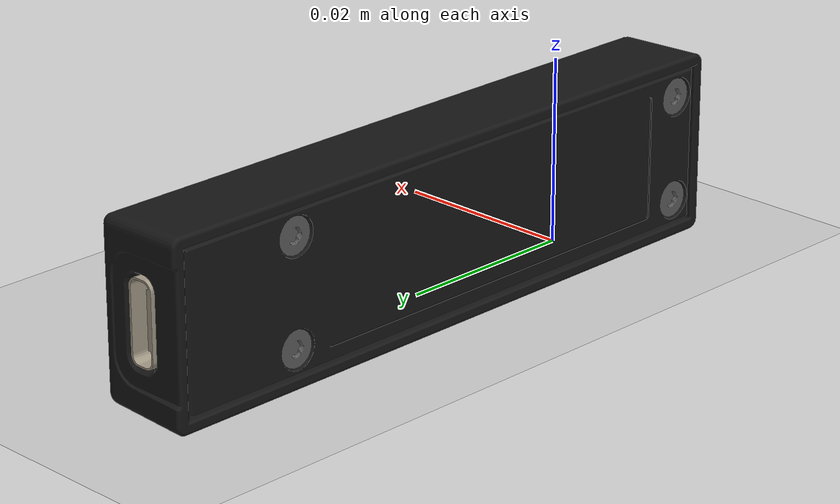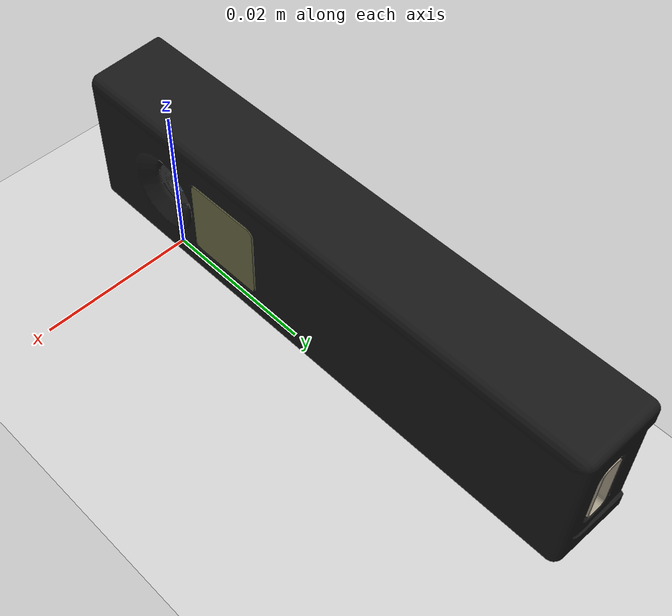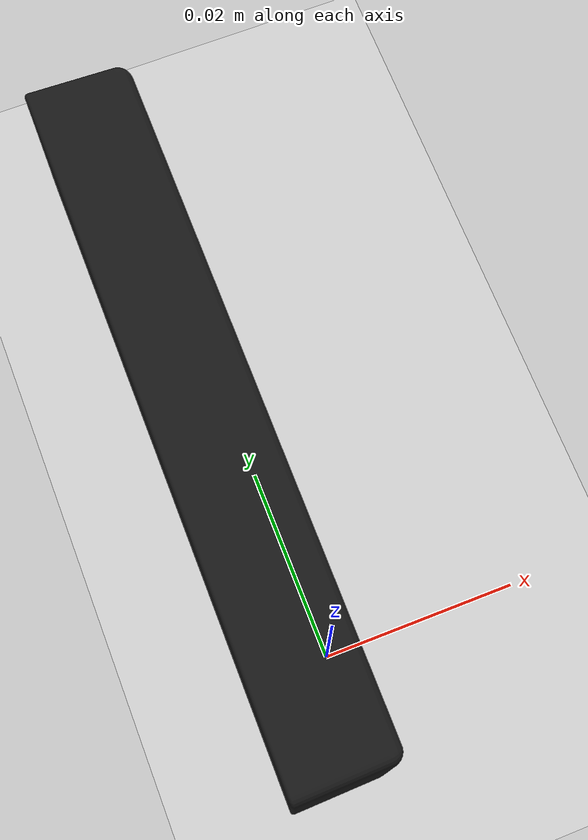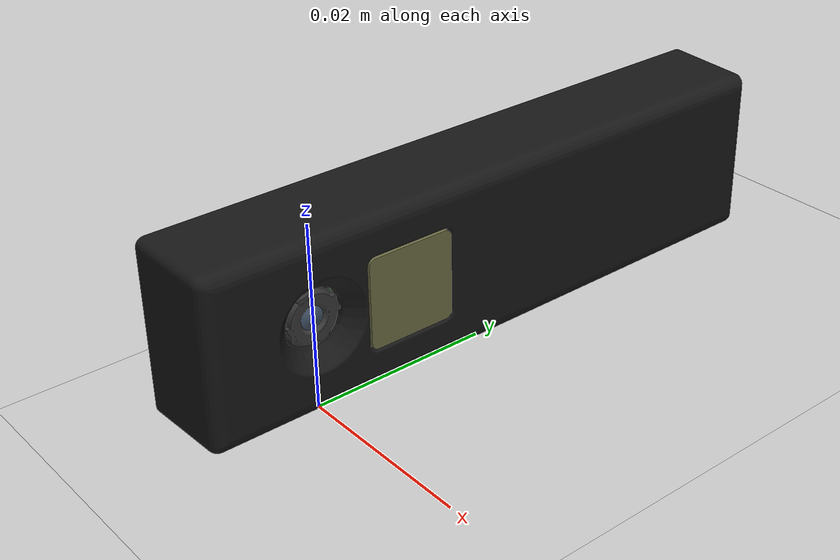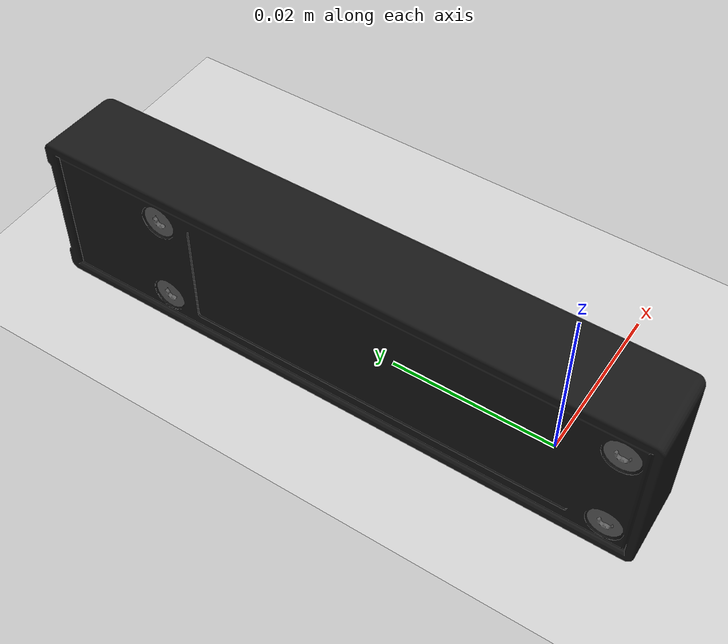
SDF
<sdf version='1.9'>
  <world name='pmd'>
    <physics type="ode">
      <max_step_size>0.004</max_step_size>
      <real_time_factor>1.0</real_time_factor>
      <real_time_update_rate>250</real_time_update_rate>
    </physics>
    <plugin name='ignition::gazebo::systems::Physics' filename='ignition-gazebo-physics-system'/>
    <plugin name='ignition::gazebo::systems::UserCommands' filename='ignition-gazebo-user-commands-system'/>
    <plugin name='ignition::gazebo::systems::SceneBroadcaster' filename='ignition-gazebo-scene-broadcaster-system'/>
    <plugin name='ignition::gazebo::systems::Contact' filename='ignition-gazebo-contact-system'/>
    <plugin name='ignition::gazebo::systems::Imu' filename='ignition-gazebo-imu-system'/>
    <plugin name='ignition::gazebo::systems::Sensors' filename='ignition-gazebo-sensors-system'>
      <render_engine>ogre2</render_engine>
    </plugin>
    <gui fullscreen='false'>
      <plugin name='3D View' filename='GzScene3D'>
        <ignition-gui>
          <title>3D View</title>
          <property type='bool' key='showTitleBar'>0</property>
          <property type='string' key='state'>docked</property>
        </ignition-gui>
        <engine>ogre2</engine>
        <scene>scene</scene>
        <ambient_light>0.6 0.6 0.6</ambient_light>
        <background_color>0.9 0.9 0.9</background_color>
        <camera_pose>-.5 0 .5 0 0.5 0</camera_pose>
      </plugin>
      <plugin name='World control' filename='WorldControl'>
        <ignition-gui>
          <title>World control</title>
          <property type='bool' key='showTitleBar'>0</property>
          <property type='bool' key='resizable'>0</property>
          <property type='double' key='height'>72</property>
          <property type='double' key='width'>120</property>
          <property type='double' key='z'>1</property>
          <property type='string' key='state'>floating</property>
          <anchors target='3D View'>
            <line own='left' target='left'/>
            <line own='bottom' target='bottom'/>
          </anchors>
        </ignition-gui>
        <play_pause>1</play_pause>
        <step>1</step>
        <start_paused>0</start_paused>
      </plugin>
      <plugin name='World stats' filename='WorldStats'>
        <ignition-gui>
          <title>World stats</title>
          <property type='bool' key='showTitleBar'>0</property>
          <property type='bool' key='resizable'>0</property>
          <property type='double' key='height'>110</property>
          <property type='double' key='width'>120</property>
          <property type='double' key='z'>1</property>
          <property type='string' key='state'>floating</property>
          <anchors target='3D View'>
            <line own='right' target='right'/>
            <line own='bottom' target='bottom'/>
          </anchors>
        </ignition-gui>
        <sim_time>1</sim_time>
        <real_time>1</real_time>
        <real_time_factor>1</real_time_factor>
        <iterations>1</iterations>
      </plugin>
      <plugin filename="ImageDisplay" name="Image Display">
        <ignition-gui>
          <property key="state" type="string">docked</property>
        </ignition-gui>
      </plugin>
      <plugin name='Entity tree' filename='EntityTree'/>
      <plugin filename="ResourceSpawner" name="ResourceSpawner">
        <gz-gui>
          <property type="string" key="state">docked</property>
        </gz-gui>
      </plugin>
    </gui>
    <gravity>0 0 -9.8</gravity>
    <magnetic_field>6e-06 2.3e-05 -4.2e-05</magnetic_field>
    <atmosphere type='adiabatic'/>
    <scene>
      <grid>false</grid>
      <ambient>0.4 0.4 0.4 1</ambient>
      <background>0.7 0.7 0.7 1</background>
      <shadows>true</shadows>
    </scene>
    <include>
      <uri>model://Flexx2_USB</uri>
    </include>
    <model name='ground_plane'>
      <static>true</static>
      <link name='link'>
        <collision name='collision'>
          <geometry>
            <plane>
              <normal>0 0 1</normal>
              <size>1 1</size>
            </plane>
          </geometry>
          <surface>
            <friction>
              <ode/>
            </friction>
            <bounce/>
            <contact/>
          </surface>
        </collision>
        <visual name='visual'>
          <geometry>
            <plane>
              <normal>0 0 1</normal>
              <size>100 100</size>
            </plane>
          </geometry>
          <material>
            <ambient>0.8 0.8 0.8 1</ambient>
            <diffuse>0.8 0.8 0.8 1</diffuse>
            <specular>0.8 0.8 0.8 1</specular>
          </material>
        </visual>
        <pose>0 0 0 0 -0 0</pose>
        <inertial>
          <pose>0 0 0 0 -0 0</pose>
          <mass>1</mass>
          <inertia>
            <ixx>1</ixx>
            <ixy>0</ixy>
            <ixz>0</ixz>
            <iyy>1</iyy>
            <iyz>0</iyz>
            <izz>1</izz>
          </inertia>
        </inertial>
        <enable_wind>false</enable_wind>
      </link>
      <pose>0 0 0 0 -0 0</pose>
      <self_collide>false</self_collide>
    </model>
    <light name='sunUTC' type='directional'>
      <pose>0 0 500 0 -0 0</pose>
      <cast_shadows>true</cast_shadows>
      <intensity>1</intensity>
      <direction>0.001 0.625 -0.78</direction>
      <diffuse>0.904 0.904 0.904 1</diffuse>
      <specular>0.271 0.271 0.271 1</specular>
      <attenuation>
        <range>2000</range>
        <linear>0</linear>
        <constant>1</constant>
        <quadratic>0</quadratic>
      </attenuation>
      <spot>
        <inner_angle>0</inner_angle>
        <outer_angle>0</outer_angle>
        <falloff>0</falloff>
      </spot>
    </light>
  </world>
</sdf>

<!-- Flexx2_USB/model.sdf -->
<sdf version='1.9'>
  <model name='Flexx2_USB'>
    <pose>0 0 .01 0 0 0</pose>
    <self_collide>false</self_collide>
    <static>false</static>
    <link name="Flexx2_USB/base_link">
      <inertial>
        <pose>-0.0035 .023 0 0 0 0</pose>
        <mass>0.0141</mass> <!-- m=.0141kg, Lx=.0109m, Ly=.0718m, Lz=.0194m -->
        <inertia>
          <ixx>0.0000064996</ixx> <!-- Ixx = m*(Ly**2+Lz**2)/12 -->
          <ixy>0</ixy>
          <ixz>0</ixz>
          <iyy>0.0000005818</iyy> <!-- Iyy = m*(Lx**2+Lz**2)/12 -->
          <iyz>0</iyz>
          <izz>0.0000061970</izz> <!-- Izz = m*(Lx**2+Ly**2)/12 -->
        </inertia>
      </inertial>
      <visual name="Flexx2_USB/visual">
        <pose>0 0 0 0 0 3.141592653589793238</pose>
        <geometry>
          <mesh>
            <scale>1 1 1</scale>
            <uri>model://Flexx2_USB/meshes/Flexx2_USB.dae</uri>
          </mesh>
        </geometry>
      </visual>
      <collision name="Flexx2_USB/collision">
        <pose>-0.0035 .023 0 0 0 0</pose>
        <geometry>
          <box>
            <size>0.0109 0.0718 0.0194</size>
          </box>
        </geometry>
      </collision>
      <sensor name="gray_image" type="camera">
        <pose>0 0 0 0 0 0</pose>
        <camera>
          <horizontal_fov>0.977384</horizontal_fov>
          <image>
            <width>224</width>
            <height>172</height>
            <format>L_INT16</format>
          </image>
          <clip>
            <near>0.1</near>
            <far>4.0</far>
          </clip>
        </camera>
        <always_on>1</always_on>
        <update_rate>30</update_rate>
        <visualize>true</visualize>
        <topic>/royale_camera/gray_image</topic>
      </sensor>
      <sensor name="depth_image" type="depth_camera">
        <pose>0 0 0 0 0 0</pose>
        <camera>
          <horizontal_fov>0.977384</horizontal_fov>
          <image>
            <width>224</width>
            <height>172</height>
            <format>R_FLOAT32</format>
          </image>
          <clip>
            <near>0.1</near>
            <far>4.0</far>
          </clip>
        </camera>
        <always_on>1</always_on>
        <update_rate>30</update_rate>
        <visualize>true</visualize>
        <topic>/royale_camera/depth_image</topic>
      </sensor>
      <gravity>true</gravity>
      <velocity_decay/>
    </link>
  </model>
</sdf>
